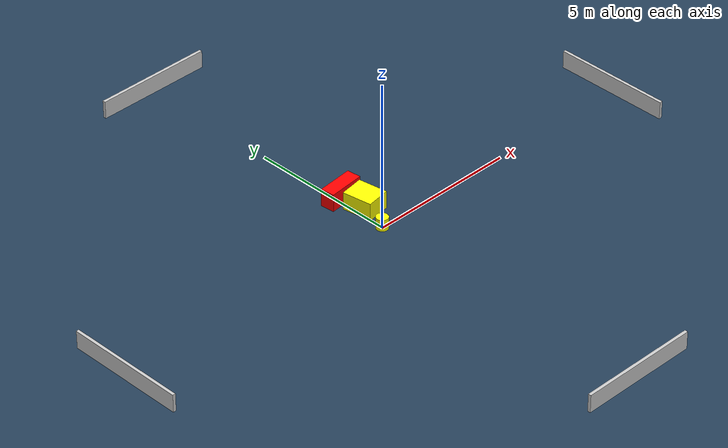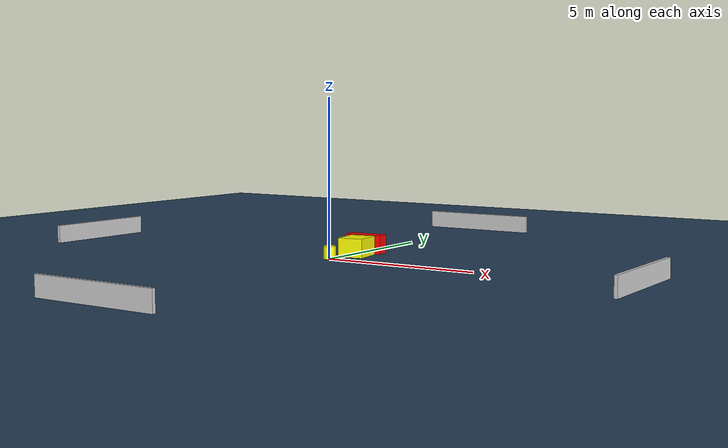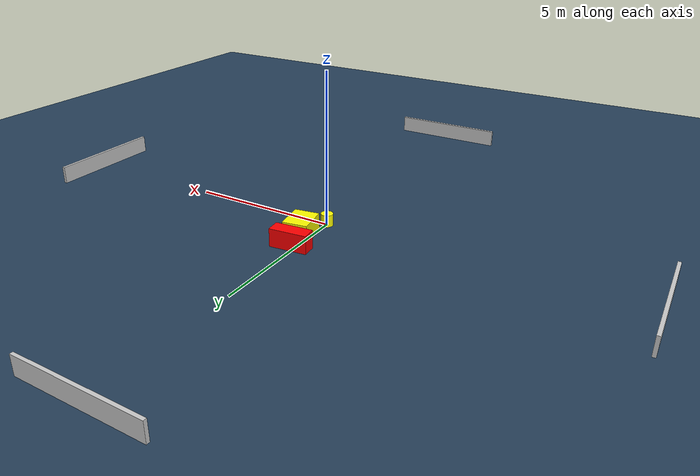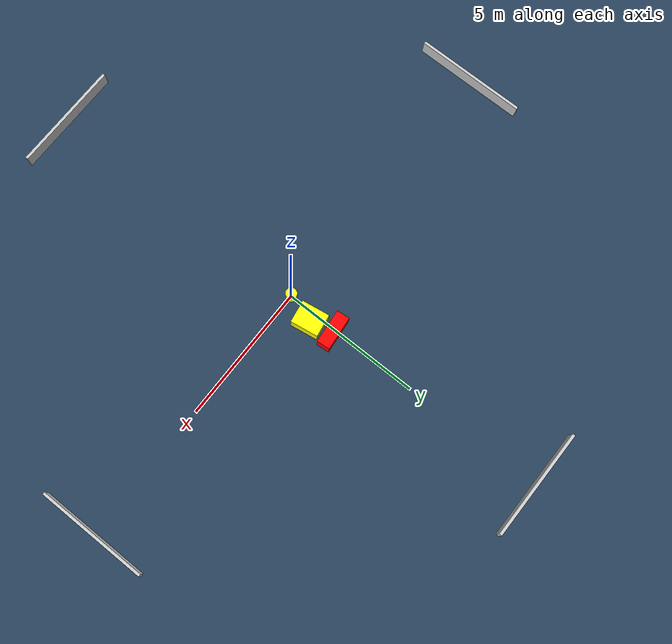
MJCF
<?xml version="1.0" ?>
<mujoco model="generated_environment">
  <option timestep="0.01" integrator="RK4" cone="elliptic"/>
  <default>
    <geom density="1"/>
  </default>
  <asset>
    <texture builtin="gradient" height="3072" name="skybox" rgb1="0.3 0.5 0.7" rgb2="0 0 0" type="skybox" width="512"/>
    <texture builtin="checker" height="300" name="groundplane" rgb1="0.2 0.3 0.4" rgb2="0.1 0.2 0.3" type="2d" width="300"/>
    <material name="groundplane" reflectance="0.2" texrepeat="5 5" texture="groundplane"/>
  </asset>
  <worldbody>
    <light dir="0 0 -1" directional="true" pos="0 0 1.5"/>
    <geom condim="3" friction="0.5 0.005 0.001" material="groundplane" name="floor" pos="0 0 0" size="0 0 0.05" type="plane"/>
    <body name="walls">
      <geom name="wall_1" condim="4" pos="-10.0 0.0 0.3" rgba="0.800000011920929 0.800000011920929 0.800000011920929 1.0" size="0.05 2.0 0.3" type="box"/>
      <geom name="wall_2" condim="4" pos="10.0 0.0 0.3" rgba="0.800000011920929 0.800000011920929 0.800000011920929 1.0" size="0.05 2.0 0.3" type="box"/>
      <geom name="wall_3" condim="4" pos="0.0 -10.0 0.3" rgba="0.800000011920929 0.800000011920929 0.800000011920929 1.0" size="2.0 0.05 0.3" type="box"/>
      <geom name="wall_4" condim="4" pos="0.0 10.0 0.3" rgba="0.800000011920929 0.800000011920929 0.800000011920929 1.0" size="2.0 0.05 0.3" type="box"/>
    </body>
    <body name="robot">
      <joint name="joint_x" type="slide" pos="0 0 0" axis="1 0 0"/>
      <joint name="joint_y" type="slide" pos="0 0 0" axis="0 1 0"/>
      <geom name="robot" type="cylinder" pos="0.0 0.0 0.2" size="0.2 0.2 0.0" mass="5.0" friction="1.0 0.005 0.0001" condim="4" rgba="1.0 1.0 0.0 1.0"/>
    </body>
    <body name="obstacle_1_movable">
      <geom name="obstacle_1_movable" condim="4" pos="0.314795046990879 1.0385355457031367 0.3" euler="0 0 188.85876000860284" friction="0.0 0.005 0.001" rgba="1.0 1.0 0.0 1.0" size="0.4070898079470051 0.49804209769336 0.3" type="box" mass="0.1"/>
      <joint type="free"/>
    </body>
    <body name="obstacle_2_static">
      <geom name="obstacle_2_static" condim="4" pos="0.1337904989766787 1.8698556848931918 0.3" euler="0 0 275.65955581636086" friction="0.0 0.005 0.001" rgba="1.0 0.0 0.0 1.0" size="0.23469061894192697 0.6141259143921958 0.3" type="box"/>
    </body>
  </worldbody>
  <actuator>
    <motor name="actuator_x" joint="joint_x" gear="1" ctrlrange="-1 1"/>
    <motor name="actuator_y" joint="joint_y" gear="1" ctrlrange="-1 1"/>
  </actuator>
</mujoco>
